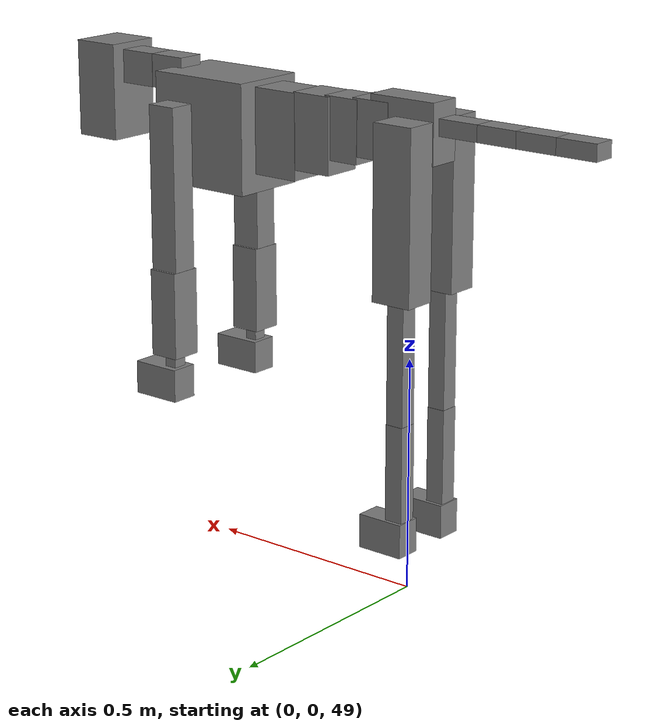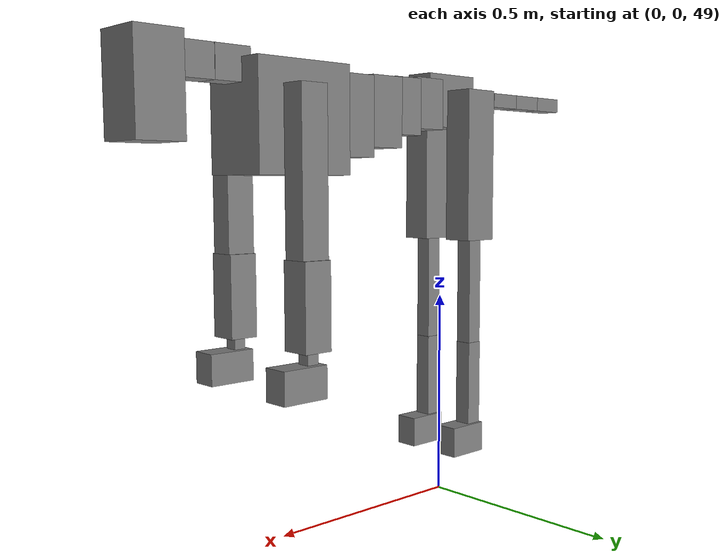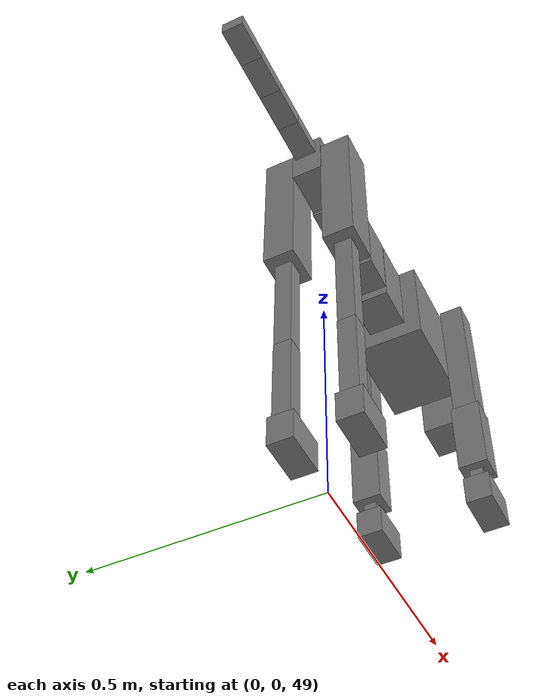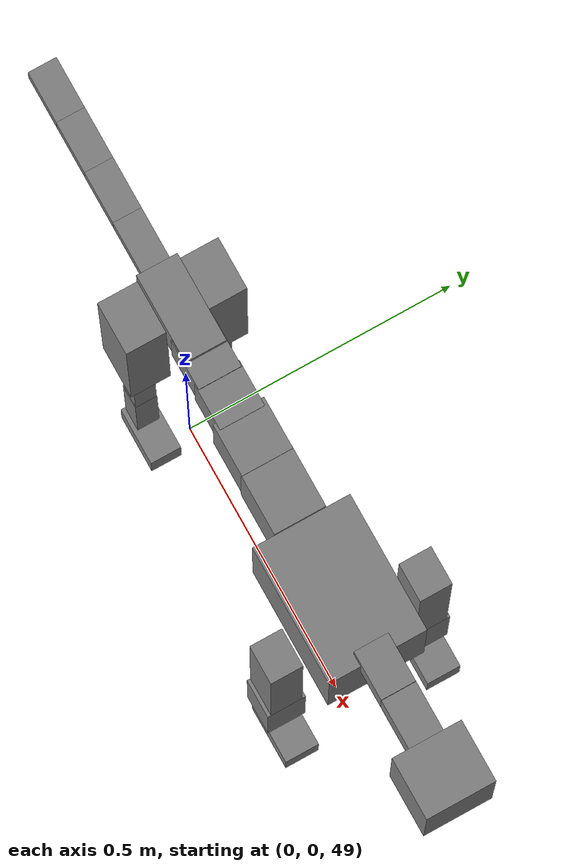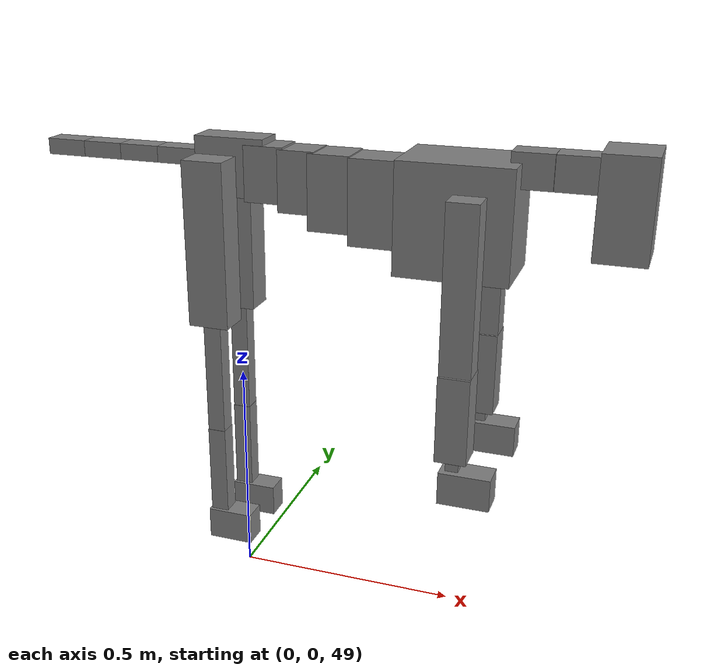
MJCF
<mujoco model="dog">

    <default>
        <joint armature="0.02" stiffness="1" damping="0.2" limited="true"/>
        <geom condim="3" friction="1 0.05 0.05" margin="0.01"/>
        <motor ctrllimited="true" ctrlrange="-1.0 1.0" forcelimited="true" gear="50"/>
    </default>

    <compiler inertiafromgeom="true" angle="radian"/>

    <option timestep="0.016" iterations="50" tolerance="1e-10" solver="Newton" jacobian="dense" cone="pyramidal"/>

    <size nconmax="20000" njmax="60000" nstack="5000000"/>
    <visual>
        <map force="0.1" zfar="30"/>
        <rgba haze="0.15 0.25 0.35 1"/>
        <quality shadowsize="2048"/>
        <global offwidth="800" offheight="800"/>
    </visual>

    <asset>
        <texture type="skybox" builtin="gradient" rgb1="0.3 0.5 0.7" rgb2="0 0 0" width="512" height="512"/>
        <texture name="texplane" type="2d" builtin="checker" rgb1=".2 .3 .4" rgb2=".1 0.15 0.2" width="512" height="512"
                 mark="cross" markrgb=".8 .8 .8"/>
        <texture name="texgeom" type="cube" builtin="flat" mark="cross" width="127" height="1278" rgb1="0.8 0.6 0.4"
                 rgb2="0.8 0.6 0.4" markrgb="1 1 1" random="0.01"/>

        <material name="matplane" reflectance="0.3" texture="texplane" texrepeat="1 1" texuniform="true"/>
        <material name="matgeom" texture="texgeom" texuniform="true" rgba="0.8 0.6 .4 1"/>
    </asset>

    <worldbody>
        <geom name="floor" pos="0 0 0" size="0 0 .25" type="plane" material="matplane" condim="3"/>

        <light directional="false" diffuse=".2 .2 .2" specular="0 0 0" pos="0 0 5" dir="0 0 -1" castshadow="false"/>
        <light mode="targetbodycom" target="torso" directional="false" diffuse=".8 .8 .8" specular="0.3 0.3 0.3"
               pos="0 0 4.0" dir="0 0 -1"/>

        <body name="root" pos="0 0 50">
            <freejoint name="root_1"/>
            <geom type="box" pos="0 0 -0.02" size="0.0774  0.0358  0.063" density="2030"/>

            <body name="spine1" pos="0.054 0 0">
                <joint name="spine1_y" axis="0 1 0" range="0 0.7" limited="true"/>
                <geom type="box" pos="0.02375 0 -0.03" size="0.04375  0.0375  0.05985" density="2030"/>

                <body name="spine2" pos="0.0612 0 0">
                    <joint name="spine2_y" axis="0 1 0" range="-0.15 0.15" limited="true"/>
                    <geom type="box" pos="0.03555  0  -0.04" size="0.04055  0.039  0.06615" density="2030"/>

                    <body name="spine3" pos="0.0730 0 0">
                        <joint name="spine3_y" axis="0 1 0" range="-0.15 0.15" limited="true"/>
                        <geom type="box" pos="0.03555  0  -0.057" size="0.04555  0.0445  0.081" density="2030"/>

                        <body name="spine4" pos="0.0780 0 0">
                            <joint name="spine4_y" axis="0 1 0" range="-0.15 0.15" limited="true"/>
                            <geom type="box" pos="0.05265  0  -0.07" size="0.05265  0.045  0.09135" density="2030"/>

                            <body name="torso" pos="0.1082 0 0">
                                <joint name="torso_y" axis="0 1 0" range="-0.15 0.15" limited="true"/>
                                <geom type="box" pos="0.11925  0  -0.085" size="0.11925  0.085  0.11745"
                                      density="2030"/>

                                <body name="neck1" pos="0.2160  0   0.0180">
                                    <joint name="neck1_y" axis="0 1 0" range="-1.2  -1" limited="true"/>
                                    <geom type="box" pos="0.0423  0  0" size="0.0423  0.03  0.036" density="2325"/>

                                    <body name="neck2" pos="0.0853  0  0">
                                        <joint name="neck2_y" axis="0 1 0" range="0.1  0" limited="true"/>
                                        <geom type="box" pos="0.0423  0  0" size="0.0423  0.03  0.036" density="2325"/>

                                        <body name="head" pos="0.0853  0  0">
                                            <joint name="head_y" axis="0 1 0" range="-0.3  -0.2" limited="true"/>
                                            <geom type="box" pos="0.0531  0  -0.055" size="0.0531  0.06  0.1044"
                                                  density="4030"/>

                                        </body>
                                    </body>
                                </body>

                                <body name="front_shoulder" pos="0.156  0   -0.0480">
                                    <joint name="front_shoulder_y" axis="0 1 0" range="-1 1.5" limited="true"/>
                                    <geom type="box" pos="0 0.13 -0.1629" size="0.0331  0.0282  0.1896" density="1158"/>
                                    <geom type="box" pos="0 -0.13 -0.1629" size="0.0331  0.0282  0.1896"
                                          density="1158"/>

                                    <body name="front_elbow" pos="0  0  -0.3259">
                                        <joint name="front_elbow_y" axis="0 1 0" range="-2 0" limited="true"/>
                                        <geom type="box" pos="0 0.13 -0.0940" size="0.0334  0.0341  0.0940"
                                              density="1081"/>
                                        <geom type="box" pos="0 -0.13 -0.0940" size="0.0334  0.0341  0.0940"
                                              density="1081"/>

                                        <body name="front_wrist" pos="0  0  -0.1880">
                                            <joint name="front_wrist_y" axis="0 1 0" range="-0.2 0" limited="true"/>
                                            <geom type="box" pos="0 0.13 -0.0209" size="0.0136  0.0152  0.0340"
                                                  density="1664"/>
                                            <geom type="box" pos="0 -0.13 -0.0209" size="0.0136  0.0152  0.0340"
                                                  density="1664"/>

                                            <body name="front_finger_end" pos="0  0  -0.0418">
                                                <joint name="front_finger_y" axis="0 1 0" range="-0.4 1"
                                                       limited="true"/>
                                                <geom type="box" pos="0.0301  0.13  -0.0207"
                                                      size="0.0551  0.0301  0.0357" density="1515"/>
                                                <geom type="box" pos="0.0301  -0.13  -0.0207"
                                                      size="0.0551  0.0301  0.0357" density="1515"/>

                                            </body>

                                        </body>
                                    </body>
                                </body>

                            </body>
                        </body>
                    </body>
                </body>
            </body>

            <body name="back_hip" pos="-0.03 0 -0.018">
                <joint name="back_hip_y" axis="0 1 0" range="-1.5 0.3" limited="true"/>
                <geom type="box" pos="0 0.07 -0.1583" size="0.0455  0.0357  0.1811" density="1154"/>
                <geom type="box" pos="0 -0.07 -0.1583" size="0.0455  0.0357  0.1811" density="1154"/>

                <body name="back_knee" pos="0  0  -0.3166">
                    <joint name="back_knee_y" axis="0 1 0" range="0 2.8" limited="true"/>
                    <geom type="box" pos="0 0.07 -0.1446" size="0.0197  0.0195  0.1602" density="1227"/>
                    <geom type="box" pos="0 -0.07 -0.1446" size="0.0197  0.0195  0.1602" density="1227"/>

                    <body name="back_ankle" pos="0  0  -0.2893">
                        <joint name="back_ankle_y" axis="0 1 0" range="-2.2 0" limited="true"/>
                        <geom type="box" pos="0 0.07 -0.1047" size="0.0202  0.0202  0.1160" density="1284"/>
                        <geom type="box" pos="0 -0.07 -0.1047" size="0.0202  0.0202  0.1160" density="1284"/>

                        <body name="back_toe_end" pos="0  0  -0.2094">
                            <joint name="back_toe_y" axis="0 1 0" range="-0.4 1" limited="true"/>
                            <geom type="box" pos="0.0281  0.07  -0.0213" size="0.0515  0.0281  0.0363" density="1515"/>
                            <geom type="box" pos="0.0281  -0.07  -0.0213" size="0.0515  0.0281  0.0363" density="1515"/>

                        </body>
                    </body>
                </body>
            </body>

            <body name="tail1" pos="-0.074 0 -0.006">
                <joint name="tail1_y" axis="0 1 0" range="-0.2 0.2" limited="true"/>
                <geom type="box" pos="-0.0536  0  0" size="0.045  0.025  0.0175" density="1587"/>

                <body name="tail2" pos="-0.09 0 0">
                    <joint name="tail2_y" axis="0 1 0" range="-0.2 0.2" limited="true"/>
                    <geom type="box" pos="-0.0536  0  0" size="0.045  0.025  0.0175" density="1587"/>

                    <body name="tail3" pos="-0.09 0 0">
                        <joint name="tail3_y" axis="0 1 0" range="-0.2 0.2" limited="true"/>
                        <geom type="box" pos="-0.0536  0  0" size="0.045  0.025  0.0175" density="1587"/>

                        <body name="tail4" pos="-0.09 0 0">
                            <joint name="tail4_y" axis="0 1 0" range="-0.2 0.2" limited="true"/>
                            <geom type="box" pos="-0.0536  0  0" size="0.045  0.025  0.0175" density="1587"/>

                        </body>
                    </body>
                </body>
            </body>
        </body>
    </worldbody>

    <actuator>
        <motor joint="spine1_y" forcerange="-150 150     "/>
        <motor joint="spine2_y" forcerange="-150 150     "/>
        <motor joint="spine3_y" forcerange="-150 150     "/>
        <motor joint="spine4_y" forcerange="-150 150     "/>
        <motor joint="torso_y" forcerange="-150 150     "/>
        <motor joint="neck1_y" forcerange="-100 100       "/>
        <motor joint="neck2_y" forcerange="-100 100       "/>
        <motor joint="head_y" forcerange="-150 150       "/>
        <motor joint="front_shoulder_y" forcerange="-127.13 161.20"/>
        <motor joint="front_elbow_y" forcerange="-159.08 189.24"/>
        <motor joint="front_wrist_y" forcerange="-65.34 55.95"/>
        <motor joint="front_finger_y" forcerange="-40.30 79.99"/>
        <motor joint="back_hip_y" forcerange="-390.68 284.70"/>
        <motor joint="back_knee_y" forcerange="-247.13 235.94"/>
        <motor joint="back_angle_y" forcerange="-116.68 107.17"/>
        <motor joint="back_toe_y" forcerange="-122.91 21.96"/>
        <motor joint="tail1_y" forcerange="-50 50     "/>
        <motor joint="tail2_y" forcerange="-50 50     "/>
        <motor joint="tail3_y" forcerange="-50 50     "/>
        <motor joint="tail4_y" forcerange="-50 50     "/>
    </actuator>
</mujoco>
